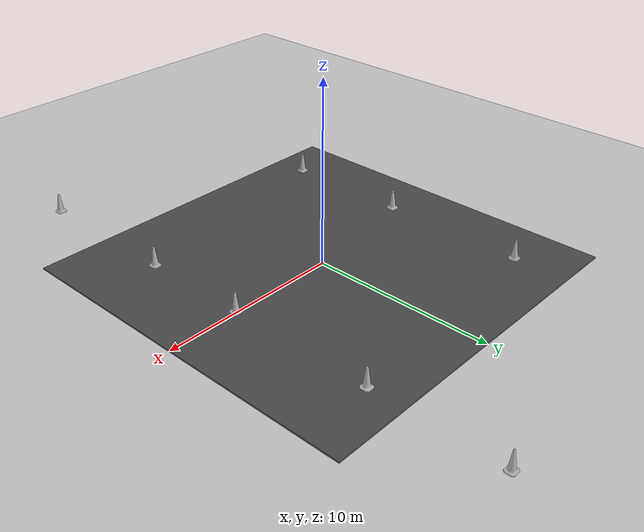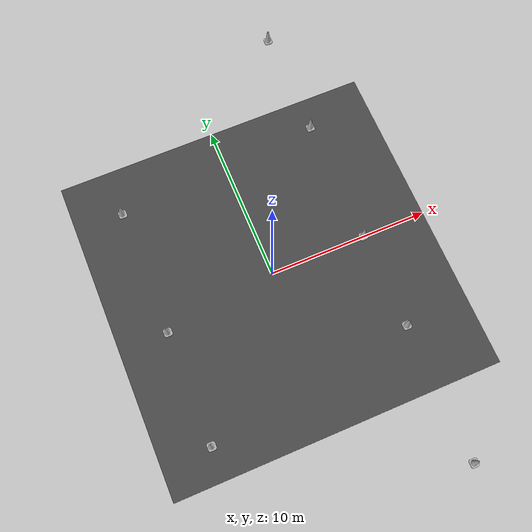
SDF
<sdf version="1.4">
 <world name="default">
  <model name="ground_plane">
   <static>1</static>
   <link name="link">
    <collision name="collision">
     <geometry><plane><normal>0 0 1</normal><size>100 100</size></plane></geometry>
     <surface><friction><ode><mu>100</mu><mu2>50</mu2></ode></friction></surface>
    </collision>
    <visual name="visual">
     <cast_shadows>0</cast_shadows>
     <geometry><plane><normal>0 0 1</normal><size>100 100</size></plane></geometry>
     <material>
      <script><uri>file://media/materials/scripts/gazebo.material</uri><name>Gazebo/Grey</name></script>
     </material>
    </visual>
    <velocity_decay><linear>0</linear><angular>0</angular></velocity_decay>
   </link>
  </model>
  <model name="asphalt_plane">
   <static>1</static>
   <link name="link">
    <collision name="collision"><geometry><box><size>20 20 0.1</size></box></geometry></collision>
    <visual name="visual">
     <cast_shadows>0</cast_shadows>
     <geometry><box><size>20 20 0.1</size></box></geometry>
     <material>
      <script>
       <uri>model://asphalt_plane/materials/scripts</uri>
       <uri>model://asphalt_plane/materials/textures</uri>
       <name>vrc/asphalt</name>
      </script>
     </material>
    </visual>
    <velocity_decay><linear>0</linear><angular>0</angular></velocity_decay>
   </link>
  </model>
  <model name="Construction Cone_19">
   <link name="link">
    <collision name="collision">
     <geometry>
      <mesh><scale>10 10 10</scale><uri>model://construction_cone/meshes/construction_cone.dae</uri></mesh>
     </geometry>
    </collision>
    <visual name="visual">
     <geometry>
      <mesh><scale>10 10 10</scale><uri>model://construction_cone/meshes/construction_cone.dae</uri></mesh>
     </geometry>
    </visual>
    <velocity_decay><linear>0</linear><angular>0</angular></velocity_decay>
    <inertial>
     <inertia><ixx>1</ixx><ixy>0</ixy><ixz>0</ixz><iyy>1</iyy><iyz>0</iyz><izz>1</izz></inertia>
     <mass>1</mass>
    </inertial>
   </link>
   <pose>-7 -8 0.04999 0 -0 0</pose>
   <static>0</static>
  </model>
  <model name="Construction Cone_20">
   <link name="link">
    <collision name="collision">
     <geometry>
      <mesh><scale>10 10 10</scale><uri>model://construction_cone/meshes/construction_cone.dae</uri></mesh>
     </geometry>
    </collision>
    <visual name="visual">
     <geometry>
      <mesh><scale>10 10 10</scale><uri>model://construction_cone/meshes/construction_cone.dae</uri></mesh>
     </geometry>
    </visual>
    <velocity_decay><linear>0</linear><angular>0</angular></velocity_decay>
    <inertial>
     <inertia><ixx>1</ixx><ixy>0</ixy><ixz>0</ixz><iyy>1</iyy><iyz>0</iyz><izz>1</izz></inertia>
     <mass>1</mass>
    </inertial>
   </link>
   <pose>-7 -0.999999 0.05 1e-06 -0 0</pose>
   <static>0</static>
  </model>
  <model name="Construction Cone_21">
   <link name="link">
    <collision name="collision">
     <geometry>
      <mesh><scale>10 10 10</scale><uri>model://construction_cone/meshes/construction_cone.dae</uri></mesh>
     </geometry>
    </collision>
    <visual name="visual">
     <geometry>
      <mesh><scale>10 10 10</scale><uri>model://construction_cone/meshes/construction_cone.dae</uri></mesh>
     </geometry>
    </visual>
    <velocity_decay><linear>0</linear><angular>0</angular></velocity_decay>
    <inertial>
     <inertia><ixx>1</ixx><ixy>0</ixy><ixz>0</ixz><iyy>1</iyy><iyz>0</iyz><izz>1</izz></inertia>
     <mass>1</mass>
    </inertial>
   </link>
   <pose>-7 7 0.05 0 -0 0</pose>
   <static>0</static>
  </model>
  <model name="Construction Cone_49">
   <link name="link">
    <collision name="collision">
     <geometry>
      <mesh><scale>10 10 10</scale><uri>model://construction_cone/meshes/construction_cone.dae</uri></mesh>
     </geometry>
    </collision>
    <visual name="visual">
     <geometry>
      <mesh><scale>10 10 10</scale><uri>model://construction_cone/meshes/construction_cone.dae</uri></mesh>
     </geometry>
    </visual>
    <velocity_decay><linear>0</linear><angular>0</angular></velocity_decay>
    <inertial>
     <inertia><ixx>1</ixx><ixy>0</ixy><ixz>0</ixz><iyy>1</iyy><iyz>0</iyz><izz>1</izz></inertia>
     <mass>1</mass>
    </inertial>
   </link>
   <pose>6 -14.4158 0.05 1e-06 -0 0</pose>
   <static>0</static>
  </model>
  <model name="Construction Cone_50">
   <link name="link">
    <collision name="collision">
     <geometry>
      <mesh><scale>10 10 10</scale><uri>model://construction_cone/meshes/construction_cone.dae</uri></mesh>
     </geometry>
    </collision>
    <visual name="visual">
     <geometry>
      <mesh><scale>10 10 10</scale><uri>model://construction_cone/meshes/construction_cone.dae</uri></mesh>
     </geometry>
    </visual>
    <velocity_decay><linear>0</linear><angular>0</angular></velocity_decay>
    <inertial>
     <inertia><ixx>1</ixx><ixy>0</ixy><ixz>0</ixz><iyy>1</iyy><iyz>0</iyz><izz>1</izz></inertia>
     <mass>1</mass>
    </inertial>
   </link>
   <pose>6 -6 0.049991 2e-06 3e-06 0</pose>
   <static>0</static>
  </model>
  <model name="Construction Cone_51">
   <link name="link">
    <collision name="collision">
     <geometry>
      <mesh><scale>10 10 10</scale><uri>model://construction_cone/meshes/construction_cone.dae</uri></mesh>
     </geometry>
    </collision>
    <visual name="visual">
     <geometry>
      <mesh><scale>10 10 10</scale><uri>model://construction_cone/meshes/construction_cone.dae</uri></mesh>
     </geometry>
    </visual>
    <velocity_decay><linear>0</linear><angular>0</angular></velocity_decay>
    <inertial>
     <inertia><ixx>1</ixx><ixy>0</ixy><ixz>0</ixz><iyy>1</iyy><iyz>0</iyz><izz>1</izz></inertia>
     <mass>1</mass>
    </inertial>
   </link>
   <pose>6 1e-06 0.05 1e-06 -0 0</pose>
   <static>0</static>
  </model>
  <model name="Construction Cone_52">
   <link name="link">
    <collision name="collision">
     <geometry>
      <mesh><scale>10 10 10</scale><uri>model://construction_cone/meshes/construction_cone.dae</uri></mesh>
     </geometry>
    </collision>
    <visual name="visual">
     <geometry>
      <mesh><scale>10 10 10</scale><uri>model://construction_cone/meshes/construction_cone.dae</uri></mesh>
     </geometry>
    </visual>
    <velocity_decay><linear>0</linear><angular>0</angular></velocity_decay>
    <inertial>
     <inertia><ixx>1</ixx><ixy>0</ixy><ixz>0</ixz><iyy>1</iyy><iyz>0</iyz><izz>1</izz></inertia>
     <mass>1</mass>
    </inertial>
   </link>
   <pose>6 8 0.05 0 1e-06 0</pose>
   <static>0</static>
  </model>
  <model name="Construction Cone_53">
   <link name="link">
    <collision name="collision">
     <geometry>
      <mesh><scale>10 10 10</scale><uri>model://construction_cone/meshes/construction_cone.dae</uri></mesh>
     </geometry>
    </collision>
    <visual name="visual">
     <geometry>
      <mesh><scale>10 10 10</scale><uri>model://construction_cone/meshes/construction_cone.dae</uri></mesh>
     </geometry>
    </visual>
    <velocity_decay><linear>0</linear><angular>0</angular></velocity_decay>
    <inertial>
     <inertia><ixx>1</ixx><ixy>0</ixy><ixz>0</ixz><iyy>1</iyy><iyz>0</iyz><izz>1</izz></inertia>
     <mass>1</mass>
    </inertial>
   </link>
   <pose>6 15 0.050001 1e-06 -2e-06 -8.07794e-28</pose>
   <static>0</static>
  </model>
 </world>
</sdf>
